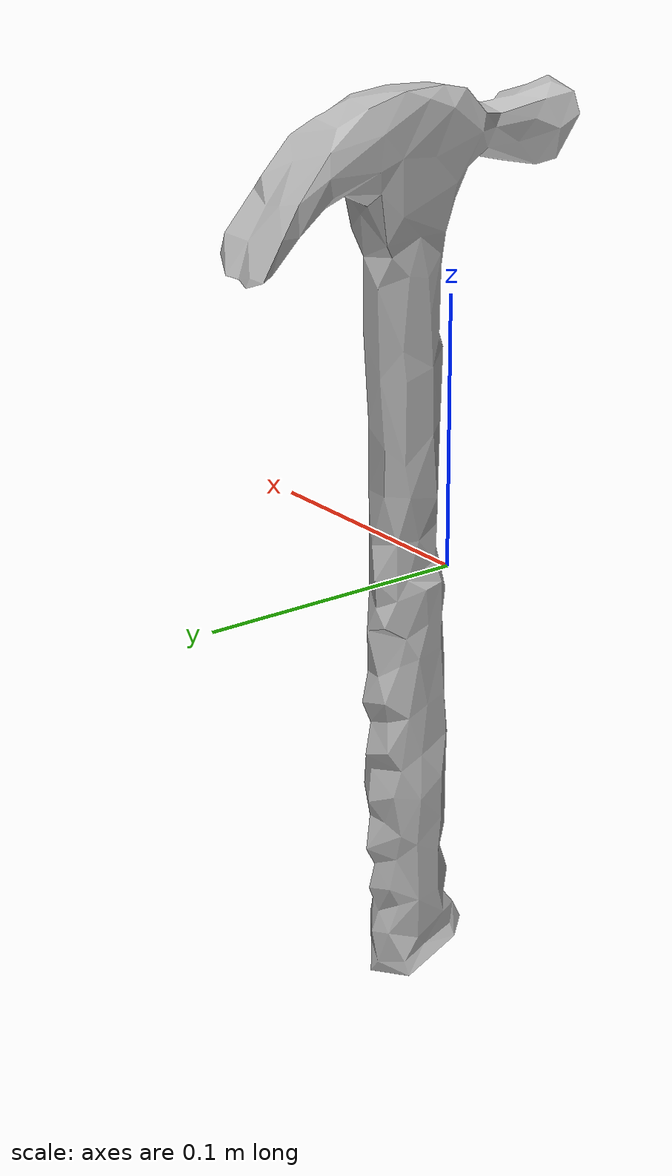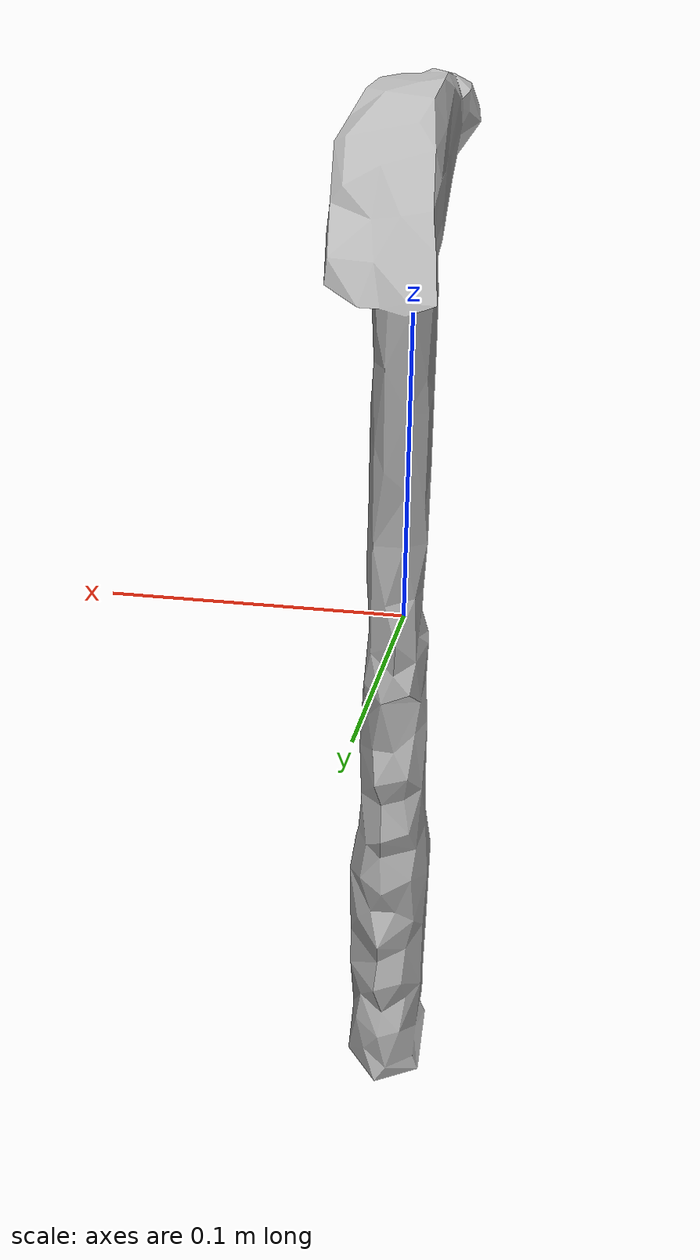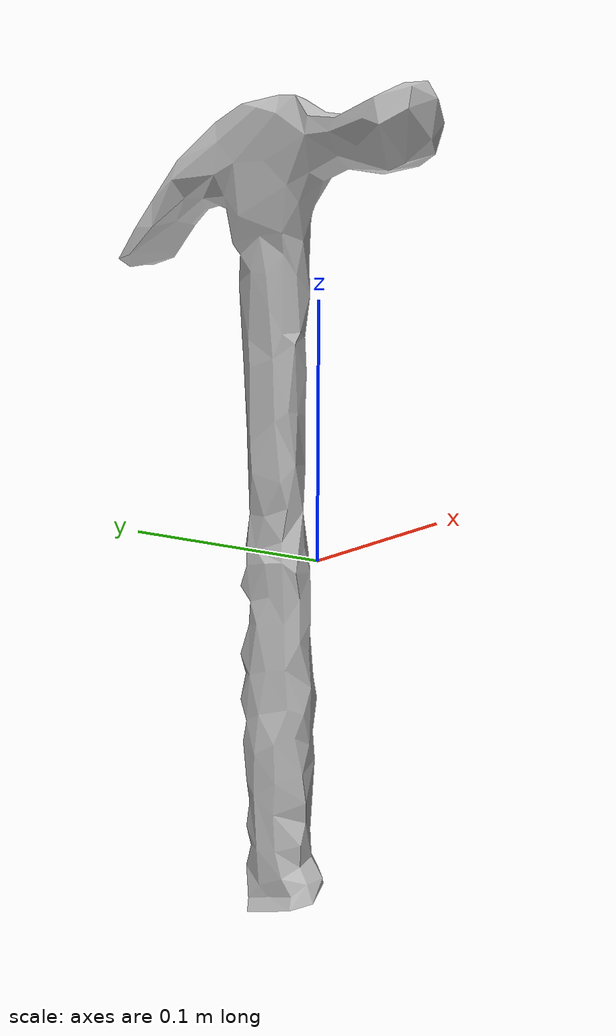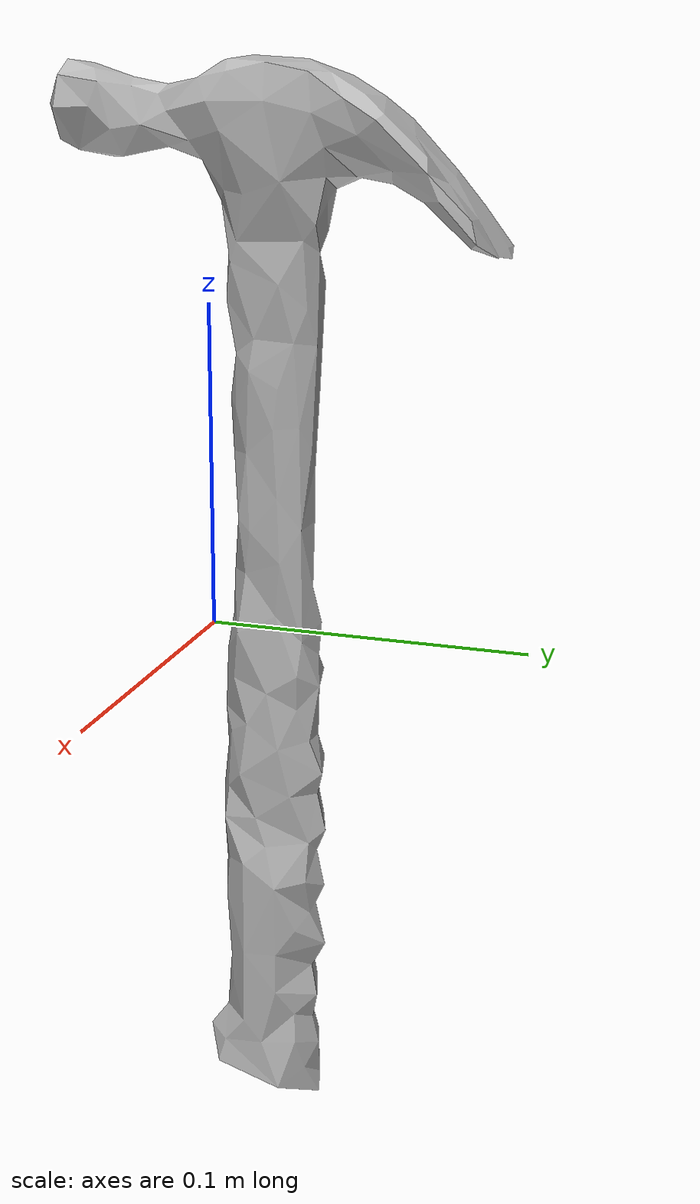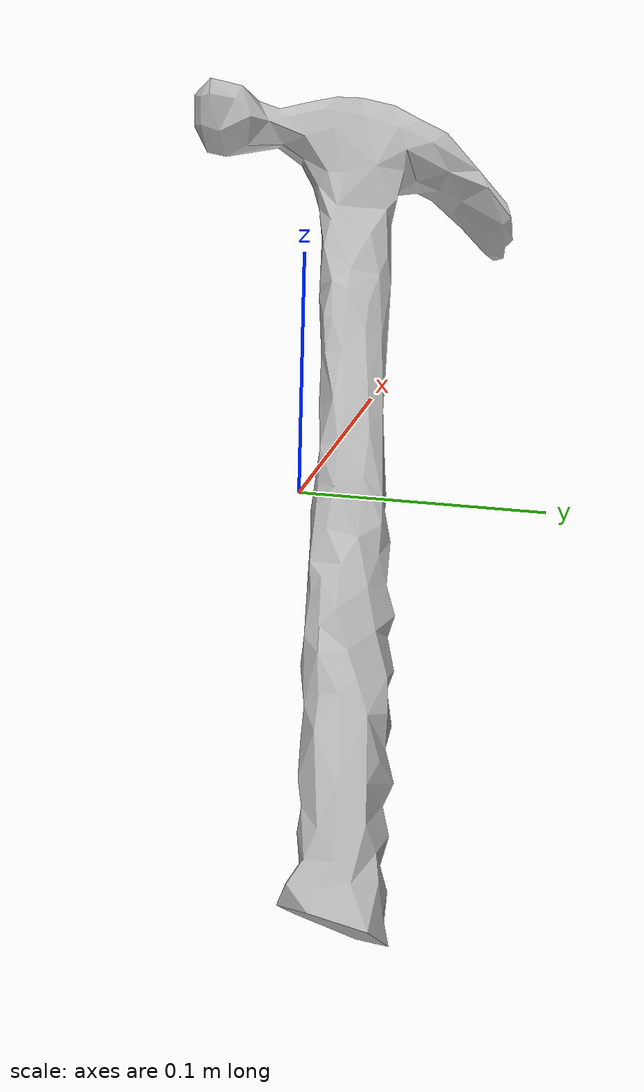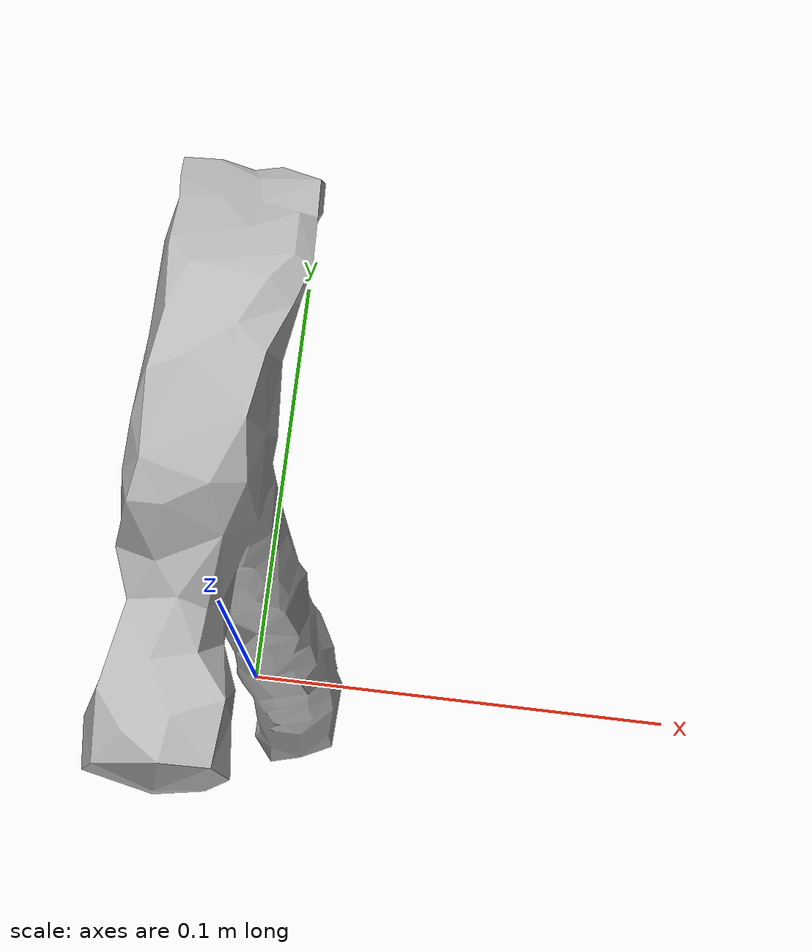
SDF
<?xml version="1.0" ?>
<sdf version="1.4">
  <model name="mallet_fiber">
    <pose>0 0 0.018  0 0 0</pose>
    <static>false</static>
    <link name="body">
      <inertial>
        <pose>-0.000529 0.019262 0.016413 0 0 0</pose>
        <mass>1.2</mass>
        <inertia>
          <ixx>2.50330e-3</ixx>
          <ixy>0.0e-3</ixy>
          <ixz>0.0e-3</ixz>
          <iyy>2.42793e-3</iyy>
          <iyz>0.0e-3</iyz>
          <izz>0.08997e-3</izz>
        </inertia>
      </inertial>
      <visual name="visual">
        <cast_shadows>true</cast_shadows>
        <geometry>
         <mesh>
           <uri>package://costar_objects/sdf/mallet_fiber/meshes/mallet_fiber.obj</uri>
         </mesh>
        </geometry>
      </visual>
      <collision name="collision">
        <surface>
          <friction>
            <ode>
              <mu>0.3</mu>
              <mu2>0.3</mu2>
            </ode>
          </friction>
        </surface>
        <geometry>
         <mesh>
           <uri>package://costar_objects/sdf/mallet_fiber/meshes/mallet_fiber.stl</uri>
         </mesh>
        </geometry>
      </collision>
    </link>
  </model>
</sdf>
